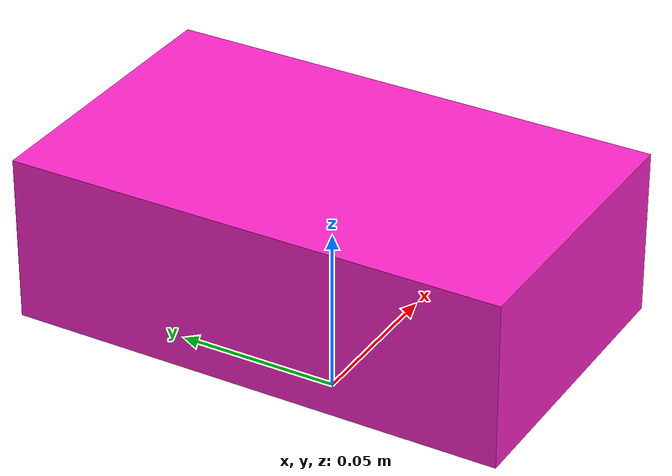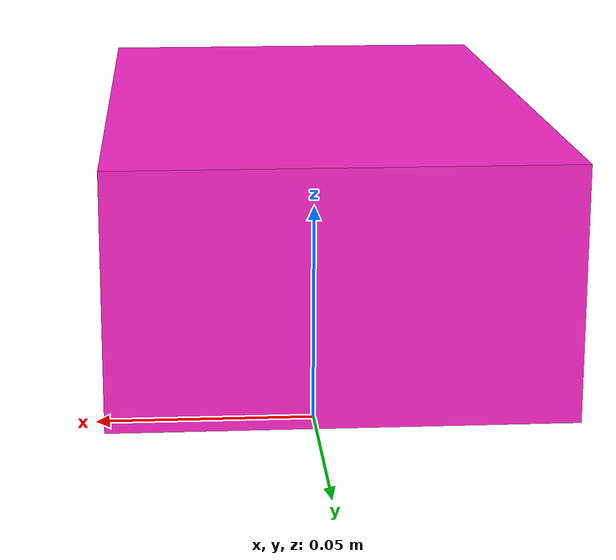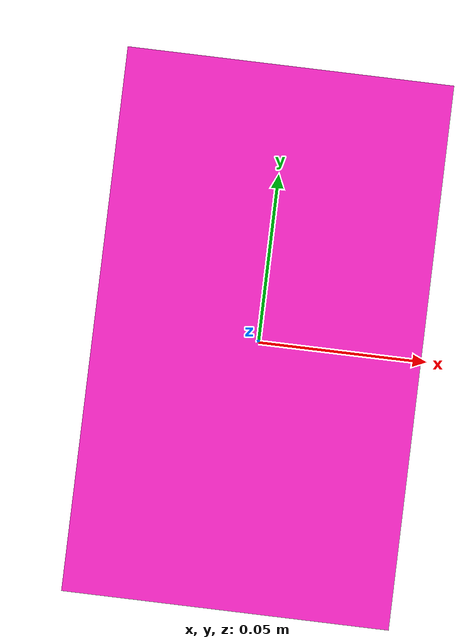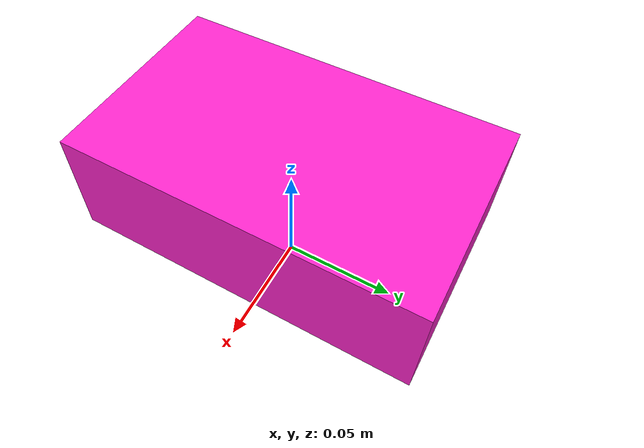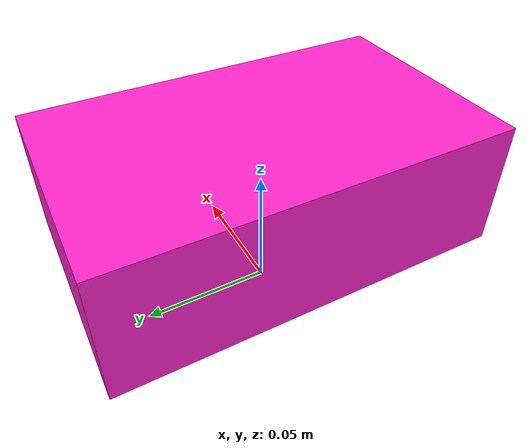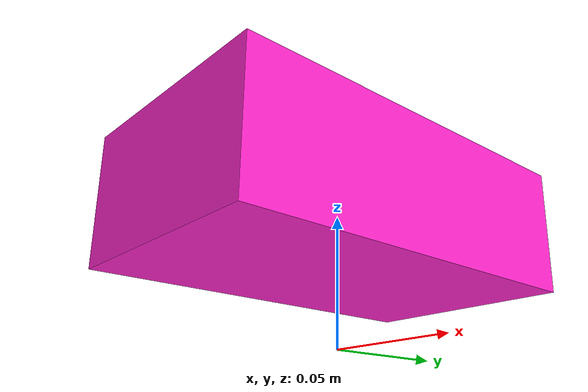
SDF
<?xml version="1.0"?>
<sdf version="1.7">
    <model name="square_target">
        <link name="base_link">
            <pose>0 0 0.025 0 0 0</pose>
            <inertial>
                <pose>0 0 0 0 0 0</pose>
                <mass>1</mass>
                <inertia>
                    <ixx>0.003542</ixx>
                    <ixy>0</ixy>
                    <ixz>0</ixz>
                    <iyy>0.006667</iyy>
                    <iyz>0</iyz>
                    <izz>0.003542</izz>
                </inertia>
            </inertial>
            <visual name = "visual">
                <pose>0 0 0.025 0 0 0</pose>
                <geometry>
                    <box>
                        <size>0.09 0.15 0.05</size>
                    </box>
                </geometry>
                <material>
                    <ambient>1 0.15 0.8 1</ambient>
                    <diffuse>1 0.15 0.8 1</diffuse>
                    <specular>0 0 0 1</specular>
                    <emissive>0 0 0 1</emissive>
                </material>
            </visual>
            <collision name = "collision">
                <pose>0 0 0.025 0 0 0</pose>
                <geometry>
                    <box>
                        <size>0.09 0.15 0.05</size>
                    </box>
                </geometry>
            </collision>
        </link>
    </model>
</sdf>
